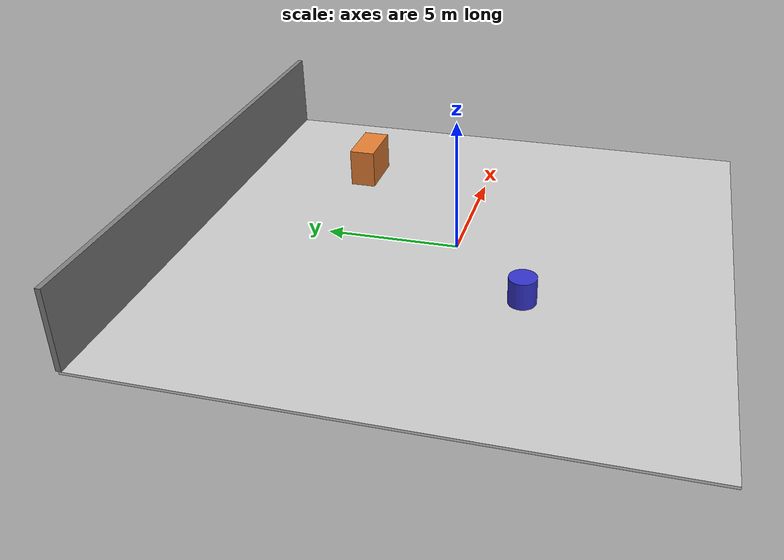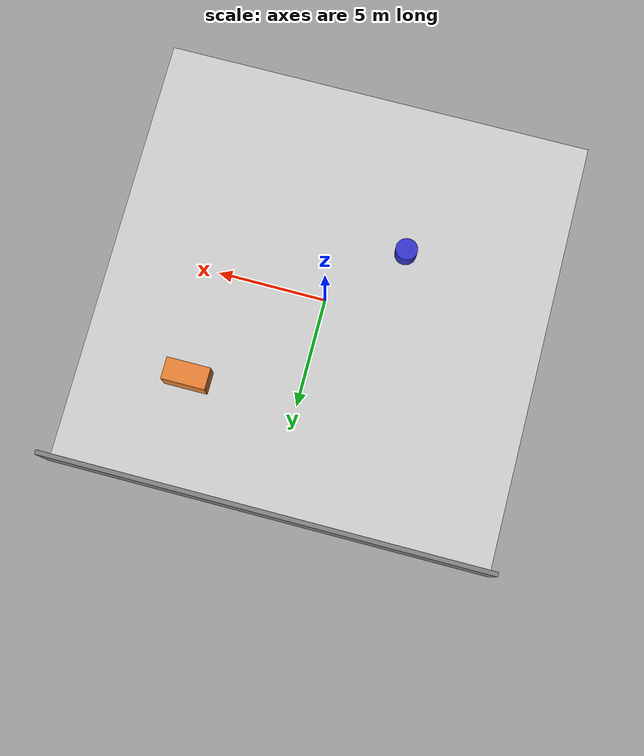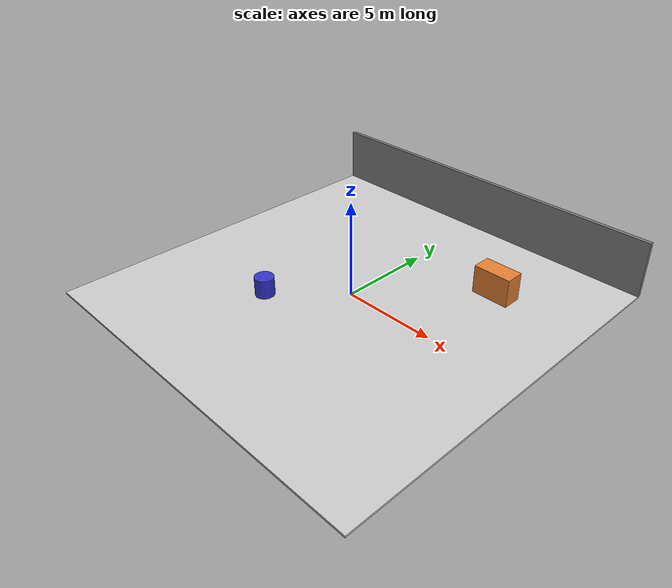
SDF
<?xml version="1.0"?>
<sdf version="1.8">
  <world name="depot">
    <gravity>0 0 -9.8066</gravity>
    <physics name="default_physics" type="dart">
        <max_step_size>0.004</max_step_size>
        <real_time_factor>1</real_time_factor>
    </physics>
    <plugin
        filename="gz-sim-physics-system"
        name="gz::sim::systems::Physics">
    </plugin>
    <plugin
        filename="gz-sim-user-commands-system"
        name="gz::sim::systems::UserCommands">
    </plugin>
    <plugin
        filename="gz-sim-scene-broadcaster-system"
        name="gz::sim::systems::SceneBroadcaster">
    </plugin>

    <scene>
      <ambient>0.4 0.4 0.4 1</ambient>
      <background>0.7 0.7 0.7 1</background>
      <shadows>true</shadows>
    </scene>

    <light type="directional" name="sun">
      <cast_shadows>true</cast_shadows>
      <pose>0 0 10 0 0 0</pose>
      <diffuse>0.8 0.8 0.8 1</diffuse>
      <specular>0.2 0.2 0.2 1</specular>
      <direction>-0.5 0.1 -0.9</direction>
    </light>

    <model name="depot_floor">
      <static>true</static>
      <link name="link">
        <collision name="collision">
          <geometry>
            <box>
              <size>20 20 0.1</size>
            </box>
          </geometry>
        </collision>
        <visual name="visual">
          <geometry>
            <box>
              <size>20 20 0.1</size>
            </box>
          </geometry>
          <material>
            <ambient>0.8 0.8 0.8 1</ambient>
            <diffuse>0.8 0.8 0.8 1</diffuse>
          </material>
        </visual>
      </link>
      <pose>0 0 -0.05 0 0 0</pose>
    </model>

    <model name="wall_1">
      <static>true</static>
      <link name="link">
        <collision name="collision">
          <geometry>
            <box>
              <size>20 0.2 3</size>
            </box>
          </geometry>
        </collision>
        <visual name="visual">
          <geometry>
            <box>
              <size>20 0.2 3</size>
            </box>
          </geometry>
          <material>
            <ambient>0.5 0.5 0.5 1</ambient>
          </material>
        </visual>
      </link>
      <pose>0 10 1.5 0 0 0</pose>
    </model>

    <model name="container_1">
      <static>true</static>
      <link name="link">
        <collision name="collision">
          <geometry>
            <box>
              <size>2 1 1.5</size>
            </box>
          </geometry>
        </collision>
        <visual name="visual">
          <geometry>
            <box>
              <size>2 1 1.5</size>
            </box>
          </geometry>
          <material>
            <ambient>0.9 0.5 0.2 1</ambient>
          </material>
        </visual>
      </link>
      <pose>5 5 0.75 0 0 0</pose>
    </model>

    <model name="obstacle_1">
      <static>true</static>
      <link name="link">
        <collision name="collision">
          <geometry>
            <cylinder>
              <radius>0.5</radius>
              <length>1.0</length>
            </cylinder>
          </geometry>
        </collision>
        <visual name="visual">
          <geometry>
            <cylinder>
              <radius>0.5</radius>
              <length>1.0</length>
            </cylinder>
          </geometry>
          <material>
            <ambient>0.2 0.2 0.8 1</ambient>
          </material>
        </visual>
      </link>
      <pose>-3 -3 0.5 0 0 0</pose>
    </model>

    <spherical_coordinates>
    <surface_model>EARTH_WGS84</surface_model>
    <latitude_deg>49.9</latitude_deg>
    <longitude_deg>8.9</longitude_deg>
    <elevation>0</elevation>
    <heading_deg>0</heading_deg>
  </spherical_coordinates>
  </world>
</sdf>
